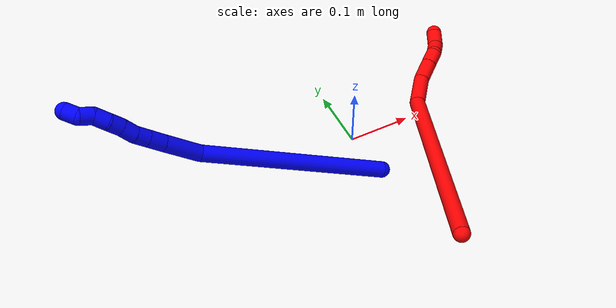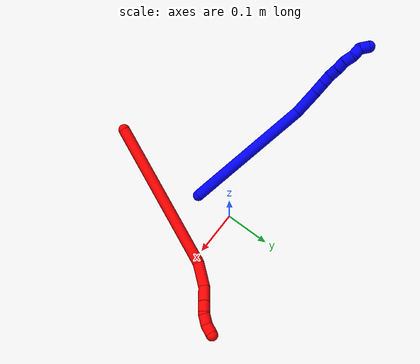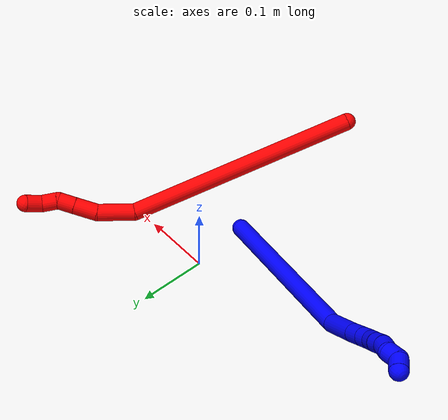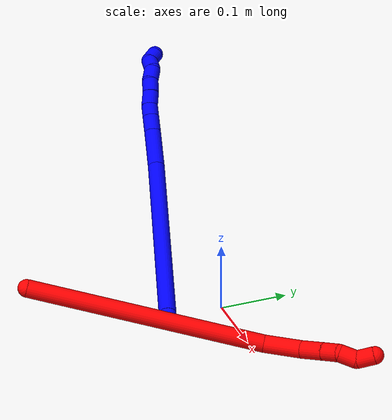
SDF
<sdf version="1.7">
 <world name="default">
  <model name="photoneo_s_sensor">
   <static>1</static>
   <pose>0 0 2 1.57079 1.57079 3.14159</pose>
   <link name="link">
    <inertial><mass>0.1</mass></inertial>
    <sensor name="sensor" type="depth">
     <update_rate>30</update_rate>
     <camera>
      <horizontal_fov>1.22</horizontal_fov>
      <image><width>1920</width><height>1200</height><format>B8G8R8</format></image>
      <clip><near>0.1</near><far>4</far></clip>
      <depth_camera><output>points</output></depth_camera>
     </camera>
     <plugin name="camera_plugin" filename="libgazebo_ros_depth_camera.so">
      <baseline>0.2</baseline>
      <alwaysOn>1</alwaysOn>
      <updateRate>0.0</updateRate>
      <cameraName>camera_ir</cameraName>
      <imageTopicName>/camera/color/image_raw</imageTopicName>
      <cameraInfoTopicName>/camera/color/camera_info</cameraInfoTopicName>
      <depthImageTopicName>/camera/depth/image_raw</depthImageTopicName>
      <depthImageCameraInfoTopicName>/camera/depth/camera_info</depthImageCameraInfoTopicName>
      <pointCloudTopicName>/camera/depth/points</pointCloudTopicName>
      <frameName>fr_optical</frameName>
      <pointCloudCutoff>0.1</pointCloudCutoff>
      <pointCloudCutoffMax>2.0</pointCloudCutoffMax>
      <distortionK1>0</distortionK1>
      <distortionK2>0</distortionK2>
      <distortionK3>0</distortionK3>
      <distortionT1>0</distortionT1>
      <distortionT2>0</distortionT2>
      <CxPrime>0</CxPrime>
      <Cx>0</Cx>
      <Cy>0</Cy>
      <focalLength>0</focalLength>
      <hackBaseline>0</hackBaseline>
     </plugin>
    </sensor>
   </link>
  </model>
  <model name="bin">
   <static>1</static>
   <link name="bottom">
    <collision name="collision-bottom">
     <pose>0 0 -0.01 0 -0 0</pose>
     <geometry><box><size>0.8 0.6 0.02</size></box></geometry>
     <surface>
      <friction><ode><mu>100</mu><mu2>100</mu2></ode></friction>
      <contact><collide_bitmask>65535</collide_bitmask></contact>
     </surface>
    </collision>
   </link>
   <link name="west_wall">
    <collision name="collision-west_wall">
     <pose>-0.41 0 0.1 0 -0 0</pose>
     <geometry><box><size>0.02 0.6 0.2</size></box></geometry>
     <surface>
      <friction><ode><mu>100</mu><mu2>100</mu2></ode></friction>
      <contact><collide_bitmask>65535</collide_bitmask></contact>
     </surface>
    </collision>
   </link>
   <link name="east_wall">
    <collision name="collision-east_wall">
     <pose>0.41 0 0.1 0 -0 0</pose>
     <geometry><box><size>0.02 0.6 0.2</size></box></geometry>
     <surface>
      <friction><ode><mu>100</mu><mu2>100</mu2></ode></friction>
      <contact><collide_bitmask>65535</collide_bitmask></contact>
     </surface>
    </collision>
   </link>
   <link name="south_wall">
    <collision name="collision-south_wall">
     <pose>0 -0.31 0.1 0 -0 0</pose>
     <geometry><box><size>0.8 0.02 0.2</size></box></geometry>
     <surface>
      <friction><ode><mu>100</mu><mu2>100</mu2></ode></friction>
      <contact><collide_bitmask>65535</collide_bitmask></contact>
     </surface>
    </collision>
   </link>
   <link name="north_wall">
    <collision name="collision-north_wall">
     <pose>0 0.31 0.1 0 -0 0</pose>
     <geometry><box><size>0.8 0.02 0.2</size></box></geometry>
     <surface>
      <friction><ode><mu>100</mu><mu2>100</mu2></ode></friction>
      <contact><collide_bitmask>65535</collide_bitmask></contact>
     </surface>
    </collision>
   </link>
  </model>
  <model name="1">
   <static>0</static>
   <link name="1">
    <collision name="collision-cylinder-e_1_1_4">
     <pose>-0.01979 0.004411 0.143485 -0.030733 -0.136992 0.002109</pose>
     <geometry><cylinder><radius>0.0125</radius><length>0.289822</length></cylinder></geometry>
     <surface>
      <friction><ode><mu>1.16</mu><mu2>1.16</mu2><slip1>0</slip1><slip2>0</slip2></ode></friction>
      <contact><ode><kp>1e+06</kp><kd>1</kd><max_vel>0</max_vel><min_depth>0.001</min_depth></ode></contact>
     </surface>
    </collision>
    <visual name="visual-cylinder-e_1_1_4">
     <pose>-0.01979 0.004411 0.143485 -0.030733 -0.136992 0.002109</pose>
     <geometry><cylinder><radius>0.0125</radius><length>0.289822</length></cylinder></geometry>
     <material><ambient>0 0 1 1</ambient></material>
    </visual>
    <collision name="collision-cylinder-e_2_4_5">
     <pose>-0.050587 0.014248 0.314199 -0.196702 -0.377458 0.037688</pose>
     <geometry><cylinder><radius>0.0125</radius><length>0.059733</length></cylinder></geometry>
     <surface>
      <friction><ode><mu>1.16</mu><mu2>1.16</mu2><slip1>0</slip1><slip2>0</slip2></ode></friction>
      <contact><ode><kp>1e+06</kp><kd>1</kd><max_vel>0</max_vel><min_depth>0.001</min_depth></ode></contact>
     </surface>
    </collision>
    <visual name="visual-cylinder-e_2_4_5">
     <pose>-0.050587 0.014248 0.314199 -0.196702 -0.377458 0.037688</pose>
     <geometry><cylinder><radius>0.0125</radius><length>0.059733</length></cylinder></geometry>
     <material><ambient>0 0 1 1</ambient></material>
    </visual>
    <collision name="collision-cylinder-e_3_5_6">
     <pose>-0.066638 0.022307 0.353091 -0.221995 -0.399172 0.045083</pose>
     <geometry><cylinder><radius>0.0125</radius><length>0.025954</length></cylinder></geometry>
     <surface>
      <friction><ode><mu>1.16</mu><mu2>1.16</mu2><slip1>0</slip1><slip2>0</slip2></ode></friction>
      <contact><ode><kp>1e+06</kp><kd>1</kd><max_vel>0</max_vel><min_depth>0.001</min_depth></ode></contact>
     </surface>
    </collision>
    <visual name="visual-cylinder-e_3_5_6">
     <pose>-0.066638 0.022307 0.353091 -0.221995 -0.399172 0.045083</pose>
     <geometry><cylinder><radius>0.0125</radius><length>0.025954</length></cylinder></geometry>
     <material><ambient>0 0 1 1</ambient></material>
    </visual>
    <collision name="collision-cylinder-e_4_6_7">
     <pose>-0.075537 0.026923 0.373805 -0.215737 -0.394323 0.043256</pose>
     <geometry><cylinder><radius>0.0125</radius><length>0.020069</length></cylinder></geometry>
     <surface>
      <friction><ode><mu>1.16</mu><mu2>1.16</mu2><slip1>0</slip1><slip2>0</slip2></ode></friction>
      <contact><ode><kp>1e+06</kp><kd>1</kd><max_vel>0</max_vel><min_depth>0.001</min_depth></ode></contact>
     </surface>
    </collision>
    <visual name="visual-cylinder-e_4_6_7">
     <pose>-0.075537 0.026923 0.373805 -0.215737 -0.394323 0.043256</pose>
     <geometry><cylinder><radius>0.0125</radius><length>0.020069</length></cylinder></geometry>
     <material><ambient>0 0 1 1</ambient></material>
    </visual>
    <collision name="collision-cylinder-e_5_7_8">
     <pose>-0.085465 0.029739 0.392074 -0.090038 -0.580582 0.026914</pose>
     <geometry><cylinder><radius>0.0125</radius><length>0.022143</length></cylinder></geometry>
     <surface>
      <friction><ode><mu>1.16</mu><mu2>1.16</mu2><slip1>0</slip1><slip2>0</slip2></ode></friction>
      <contact><ode><kp>1e+06</kp><kd>1</kd><max_vel>0</max_vel><min_depth>0.001</min_depth></ode></contact>
     </surface>
    </collision>
    <visual name="visual-cylinder-e_5_7_8">
     <pose>-0.085465 0.029739 0.392074 -0.090038 -0.580582 0.026914</pose>
     <geometry><cylinder><radius>0.0125</radius><length>0.022143</length></cylinder></geometry>
     <material><ambient>0 0 1 1</ambient></material>
    </visual>
    <collision name="collision-cylinder-e_6_8_9">
     <pose>-0.096216 0.032348 0.410132 -0.198421 -0.478729 0.048573</pose>
     <geometry><cylinder><radius>0.0125</radius><length>0.020312</length></cylinder></geometry>
     <surface>
      <friction><ode><mu>1.16</mu><mu2>1.16</mu2><slip1>0</slip1><slip2>0</slip2></ode></friction>
      <contact><ode><kp>1e+06</kp><kd>1</kd><max_vel>0</max_vel><min_depth>0.001</min_depth></ode></contact>
     </surface>
    </collision>
    <visual name="visual-cylinder-e_6_8_9">
     <pose>-0.096216 0.032348 0.410132 -0.198421 -0.478729 0.048573</pose>
     <geometry><cylinder><radius>0.0125</radius><length>0.020312</length></cylinder></geometry>
     <material><ambient>0 0 1 1</ambient></material>
    </visual>
    <collision name="collision-cylinder-e_7_9_10">
     <pose>-0.105142 0.033193 0.428839 0.09411 -0.40477 -0.019324</pose>
     <geometry><cylinder><radius>0.0125</radius><length>0.021571</length></cylinder></geometry>
     <surface>
      <friction><ode><mu>1.16</mu><mu2>1.16</mu2><slip1>0</slip1><slip2>0</slip2></ode></friction>
      <contact><ode><kp>1e+06</kp><kd>1</kd><max_vel>0</max_vel><min_depth>0.001</min_depth></ode></contact>
     </surface>
    </collision>
    <visual name="visual-cylinder-e_7_9_10">
     <pose>-0.105142 0.033193 0.428839 0.09411 -0.40477 -0.019324</pose>
     <geometry><cylinder><radius>0.0125</radius><length>0.021571</length></cylinder></geometry>
     <material><ambient>0 0 1 1</ambient></material>
    </visual>
    <collision name="collision-cylinder-e_8_10_11">
     <pose>-0.109767 0.034047 0.448688 -0.177101 -0.037272 0.00331</pose>
     <geometry><cylinder><radius>0.0125</radius><length>0.020287</length></cylinder></geometry>
     <surface>
      <friction><ode><mu>1.16</mu><mu2>1.16</mu2><slip1>0</slip1><slip2>0</slip2></ode></friction>
      <contact><ode><kp>1e+06</kp><kd>1</kd><max_vel>0</max_vel><min_depth>0.001</min_depth></ode></contact>
     </surface>
    </collision>
    <visual name="visual-cylinder-e_8_10_11">
     <pose>-0.109767 0.034047 0.448688 -0.177101 -0.037272 0.00331</pose>
     <geometry><cylinder><radius>0.0125</radius><length>0.020287</length></cylinder></geometry>
     <material><ambient>0 0 1 1</ambient></material>
    </visual>
    <collision name="collision-cylinder-e_9_11_2">
     <pose>-0.11219 0.031226 0.467365 0.48706 -0.204796 -0.051051</pose>
     <geometry><cylinder><radius>0.0125</radius><length>0.020108</length></cylinder></geometry>
     <surface>
      <friction><ode><mu>1.16</mu><mu2>1.16</mu2><slip1>0</slip1><slip2>0</slip2></ode></friction>
      <contact><ode><kp>1e+06</kp><kd>1</kd><max_vel>0</max_vel><min_depth>0.001</min_depth></ode></contact>
     </surface>
    </collision>
    <visual name="visual-cylinder-e_9_11_2">
     <pose>-0.11219 0.031226 0.467365 0.48706 -0.204796 -0.051051</pose>
     <geometry><cylinder><radius>0.0125</radius><length>0.020108</length></cylinder></geometry>
     <material><ambient>0 0 1 1</ambient></material>
    </visual>
    <collision name="collision-sphere-2">
     <pose>-0.114235 0.026619 0.476064 0 -0 0</pose>
     <geometry><sphere><radius>0.0125</radius></sphere></geometry>
     <surface>
      <friction><ode><mu>1.16</mu><mu2>1.16</mu2><slip1>0</slip1><slip2>0</slip2></ode></friction>
      <contact><ode><kp>1e+06</kp><kd>1</kd><max_vel>0</max_vel><min_depth>0.001</min_depth></ode></contact>
     </surface>
    </collision>
    <visual name="visual-sphere-2">
     <pose>-0.114235 0.026619 0.476064 0 -0 0</pose>
     <geometry><sphere><radius>0.0125</radius></sphere></geometry>
     <material><ambient>0 0 1 1</ambient></material>
    </visual>
    <collision name="collision-sphere-11">
     <pose>-0.110145 0.035833 0.458666 0 -0 0</pose>
     <geometry><sphere><radius>0.0125</radius></sphere></geometry>
     <surface>
      <friction><ode><mu>1.16</mu><mu2>1.16</mu2><slip1>0</slip1><slip2>0</slip2></ode></friction>
      <contact><ode><kp>1e+06</kp><kd>1</kd><max_vel>0</max_vel><min_depth>0.001</min_depth></ode></contact>
     </surface>
    </collision>
    <visual name="visual-sphere-11">
     <pose>-0.110145 0.035833 0.458666 0 -0 0</pose>
     <geometry><sphere><radius>0.0125</radius></sphere></geometry>
     <material><ambient>0 0 1 1</ambient></material>
    </visual>
    <collision name="collision-sphere-10">
     <pose>-0.109389 0.032262 0.43871 0 -0 0</pose>
     <geometry><sphere><radius>0.0125</radius></sphere></geometry>
     <surface>
      <friction><ode><mu>1.16</mu><mu2>1.16</mu2><slip1>0</slip1><slip2>0</slip2></ode></friction>
      <contact><ode><kp>1e+06</kp><kd>1</kd><max_vel>0</max_vel><min_depth>0.001</min_depth></ode></contact>
     </surface>
    </collision>
    <visual name="visual-sphere-10">
     <pose>-0.109389 0.032262 0.43871 0 -0 0</pose>
     <geometry><sphere><radius>0.0125</radius></sphere></geometry>
     <material><ambient>0 0 1 1</ambient></material>
    </visual>
    <collision name="collision-sphere-9">
     <pose>-0.100894 0.034125 0.418969 0 -0 0</pose>
     <geometry><sphere><radius>0.0125</radius></sphere></geometry>
     <surface>
      <friction><ode><mu>1.16</mu><mu2>1.16</mu2><slip1>0</slip1><slip2>0</slip2></ode></friction>
      <contact><ode><kp>1e+06</kp><kd>1</kd><max_vel>0</max_vel><min_depth>0.001</min_depth></ode></contact>
     </surface>
    </collision>
    <visual name="visual-sphere-9">
     <pose>-0.100894 0.034125 0.418969 0 -0 0</pose>
     <geometry><sphere><radius>0.0125</radius></sphere></geometry>
     <material><ambient>0 0 1 1</ambient></material>
    </visual>
    <collision name="collision-sphere-4">
     <pose>-0.039579 0.008822 0.286971 0 -0 0</pose>
     <geometry><sphere><radius>0.0125</radius></sphere></geometry>
     <surface>
      <friction><ode><mu>1.16</mu><mu2>1.16</mu2><slip1>0</slip1><slip2>0</slip2></ode></friction>
      <contact><ode><kp>1e+06</kp><kd>1</kd><max_vel>0</max_vel><min_depth>0.001</min_depth></ode></contact>
     </surface>
    </collision>
    <visual name="visual-sphere-4">
     <pose>-0.039579 0.008822 0.286971 0 -0 0</pose>
     <geometry><sphere><radius>0.0125</radius></sphere></geometry>
     <material><ambient>0 0 1 1</ambient></material>
    </visual>
    <collision name="collision-sphere-1">
     <geometry><sphere><radius>0.0125</radius></sphere></geometry>
     <surface>
      <friction><ode><mu>1.16</mu><mu2>1.16</mu2><slip1>0</slip1><slip2>0</slip2></ode></friction>
      <contact><ode><kp>1e+06</kp><kd>1</kd><max_vel>0</max_vel><min_depth>0.001</min_depth></ode></contact>
     </surface>
    </collision>
    <visual name="visual-sphere-1">
     <geometry><sphere><radius>0.0125</radius></sphere></geometry>
     <material><ambient>0 0 1 1</ambient></material>
    </visual>
    <collision name="collision-sphere-8">
     <pose>-0.091538 0.030571 0.401294 0 -0 0</pose>
     <geometry><sphere><radius>0.0125</radius></sphere></geometry>
     <surface>
      <friction><ode><mu>1.16</mu><mu2>1.16</mu2><slip1>0</slip1><slip2>0</slip2></ode></friction>
      <contact><ode><kp>1e+06</kp><kd>1</kd><max_vel>0</max_vel><min_depth>0.001</min_depth></ode></contact>
     </surface>
    </collision>
    <visual name="visual-sphere-8">
     <pose>-0.091538 0.030571 0.401294 0 -0 0</pose>
     <geometry><sphere><radius>0.0125</radius></sphere></geometry>
     <material><ambient>0 0 1 1</ambient></material>
    </visual>
    <collision name="collision-sphere-5">
     <pose>-0.061594 0.019675 0.341428 0 -0 0</pose>
     <geometry><sphere><radius>0.0125</radius></sphere></geometry>
     <surface>
      <friction><ode><mu>1.16</mu><mu2>1.16</mu2><slip1>0</slip1><slip2>0</slip2></ode></friction>
      <contact><ode><kp>1e+06</kp><kd>1</kd><max_vel>0</max_vel><min_depth>0.001</min_depth></ode></contact>
     </surface>
    </collision>
    <visual name="visual-sphere-5">
     <pose>-0.061594 0.019675 0.341428 0 -0 0</pose>
     <geometry><sphere><radius>0.0125</radius></sphere></geometry>
     <material><ambient>0 0 1 1</ambient></material>
    </visual>
    <collision name="collision-sphere-6">
     <pose>-0.071681 0.02494 0.364755 0 -0 0</pose>
     <geometry><sphere><radius>0.0125</radius></sphere></geometry>
     <surface>
      <friction><ode><mu>1.16</mu><mu2>1.16</mu2><slip1>0</slip1><slip2>0</slip2></ode></friction>
      <contact><ode><kp>1e+06</kp><kd>1</kd><max_vel>0</max_vel><min_depth>0.001</min_depth></ode></contact>
     </surface>
    </collision>
    <visual name="visual-sphere-6">
     <pose>-0.071681 0.02494 0.364755 0 -0 0</pose>
     <geometry><sphere><radius>0.0125</radius></sphere></geometry>
     <material><ambient>0 0 1 1</ambient></material>
    </visual>
    <collision name="collision-sphere-7">
     <pose>-0.079392 0.028906 0.382855 0 -0 0</pose>
     <geometry><sphere><radius>0.0125</radius></sphere></geometry>
     <surface>
      <friction><ode><mu>1.16</mu><mu2>1.16</mu2><slip1>0</slip1><slip2>0</slip2></ode></friction>
      <contact><ode><kp>1e+06</kp><kd>1</kd><max_vel>0</max_vel><min_depth>0.001</min_depth></ode></contact>
     </surface>
    </collision>
    <visual name="visual-sphere-7">
     <pose>-0.079392 0.028906 0.382855 0 -0 0</pose>
     <geometry><sphere><radius>0.0125</radius></sphere></geometry>
     <material><ambient>0 0 1 1</ambient></material>
    </visual>
    <inertial>
     <pose>-0.045201 0.013198 0.243566 0 -0 0</pose>
     <mass>0.5</mass>
     <inertia>
      <ixx>0.002047</ixx>
      <ixy>0</ixy>
      <ixz>0</ixz>
      <iyy>0.002078</iyy>
      <iyz>0</iyz>
      <izz>0.000261</izz>
     </inertia>
    </inertial>
   </link>
   <pose>0.005235 -0.083805 0.01149 1.10322 1.12122 -2.26018</pose>
  </model>
  <model name="2">
   <static>0</static>
   <link name="2">
    <collision name="collision-cylinder-e_1_1_4">
     <pose>0.046314 0.094687 -0.130837 -2.51513 0.279273 -0.818844</pose>
     <geometry><cylinder><radius>0.0125</radius><length>0.336029</length></cylinder></geometry>
     <surface>
      <friction><ode><mu>1.16</mu><mu2>1.16</mu2><slip1>0</slip1><slip2>0</slip2></ode></friction>
      <contact><ode><kp>1e+06</kp><kd>1</kd><max_vel>0</max_vel><min_depth>0.001</min_depth></ode></contact>
     </surface>
    </collision>
    <visual name="visual-cylinder-e_1_1_4">
     <pose>0.046314 0.094687 -0.130837 -2.51513 0.279273 -0.818844</pose>
     <geometry><cylinder><radius>0.0125</radius><length>0.336029</length></cylinder></geometry>
     <material><ambient>1 0 0 1</ambient></material>
    </visual>
    <collision name="collision-cylinder-e_2_4_5">
     <pose>0.105173 0.209655 -0.275004 -2.15231 0.477052 -0.847063</pose>
     <geometry><cylinder><radius>0.0125</radius><length>0.054641</length></cylinder></geometry>
     <surface>
      <friction><ode><mu>1.16</mu><mu2>1.16</mu2><slip1>0</slip1><slip2>0</slip2></ode></friction>
      <contact><ode><kp>1e+06</kp><kd>1</kd><max_vel>0</max_vel><min_depth>0.001</min_depth></ode></contact>
     </surface>
    </collision>
    <visual name="visual-cylinder-e_2_4_5">
     <pose>0.105173 0.209655 -0.275004 -2.15231 0.477052 -0.847063</pose>
     <geometry><cylinder><radius>0.0125</radius><length>0.054641</length></cylinder></geometry>
     <material><ambient>1 0 0 1</ambient></material>
    </visual>
    <collision name="collision-cylinder-e_3_5_6">
     <pose>0.127466 0.24372 -0.291862 -1.82128 0.600727 -0.759219</pose>
     <geometry><cylinder><radius>0.0125</radius><length>0.034495</length></cylinder></geometry>
     <surface>
      <friction><ode><mu>1.16</mu><mu2>1.16</mu2><slip1>0</slip1><slip2>0</slip2></ode></friction>
      <contact><ode><kp>1e+06</kp><kd>1</kd><max_vel>0</max_vel><min_depth>0.001</min_depth></ode></contact>
     </surface>
    </collision>
    <visual name="visual-cylinder-e_3_5_6">
     <pose>0.127466 0.24372 -0.291862 -1.82128 0.600727 -0.759219</pose>
     <geometry><cylinder><radius>0.0125</radius><length>0.034495</length></cylinder></geometry>
     <material><ambient>1 0 0 1</ambient></material>
    </visual>
    <collision name="collision-cylinder-e_4_6_7">
     <pose>0.144227 0.26717 -0.297821 -1.81729 0.61304 -0.771325</pose>
     <geometry><cylinder><radius>0.0125</radius><length>0.024375</length></cylinder></geometry>
     <surface>
      <friction><ode><mu>1.16</mu><mu2>1.16</mu2><slip1>0</slip1><slip2>0</slip2></ode></friction>
      <contact><ode><kp>1e+06</kp><kd>1</kd><max_vel>0</max_vel><min_depth>0.001</min_depth></ode></contact>
     </surface>
    </collision>
    <visual name="visual-cylinder-e_4_6_7">
     <pose>0.144227 0.26717 -0.297821 -1.81729 0.61304 -0.771325</pose>
     <geometry><cylinder><radius>0.0125</radius><length>0.024375</length></cylinder></geometry>
     <material><ambient>1 0 0 1</ambient></material>
    </visual>
    <collision name="collision-cylinder-e_5_7_8">
     <pose>0.157746 0.283796 -0.308313 -2.42933 0.548477 -1.295</pose>
     <geometry><cylinder><radius>0.0125</radius><length>0.024958</length></cylinder></geometry>
     <surface>
      <friction><ode><mu>1.16</mu><mu2>1.16</mu2><slip1>0</slip1><slip2>0</slip2></ode></friction>
      <contact><ode><kp>1e+06</kp><kd>1</kd><max_vel>0</max_vel><min_depth>0.001</min_depth></ode></contact>
     </surface>
    </collision>
    <visual name="visual-cylinder-e_5_7_8">
     <pose>0.157746 0.283796 -0.308313 -2.42933 0.548477 -1.295</pose>
     <geometry><cylinder><radius>0.0125</radius><length>0.024958</length></cylinder></geometry>
     <material><ambient>1 0 0 1</ambient></material>
    </visual>
    <collision name="collision-cylinder-e_6_8_2">
     <pose>0.166068 0.30247 -0.321071 -1.95225 0.142925 -0.210895</pose>
     <geometry><cylinder><radius>0.0125</radius><length>0.025503</length></cylinder></geometry>
     <surface>
      <friction><ode><mu>1.16</mu><mu2>1.16</mu2><slip1>0</slip1><slip2>0</slip2></ode></friction>
      <contact><ode><kp>1e+06</kp><kd>1</kd><max_vel>0</max_vel><min_depth>0.001</min_depth></ode></contact>
     </surface>
    </collision>
    <visual name="visual-cylinder-e_6_8_2">
     <pose>0.166068 0.30247 -0.321071 -1.95225 0.142925 -0.210895</pose>
     <geometry><cylinder><radius>0.0125</radius><length>0.025503</length></cylinder></geometry>
     <material><ambient>1 0 0 1</ambient></material>
    </visual>
    <collision name="collision-sphere-2">
     <pose>0.167885 0.314185 -0.32577 0 -0 0</pose>
     <geometry><sphere><radius>0.0125</radius></sphere></geometry>
     <surface>
      <friction><ode><mu>1.16</mu><mu2>1.16</mu2><slip1>0</slip1><slip2>0</slip2></ode></friction>
      <contact><ode><kp>1e+06</kp><kd>1</kd><max_vel>0</max_vel><min_depth>0.001</min_depth></ode></contact>
     </surface>
    </collision>
    <visual name="visual-sphere-2">
     <pose>0.167885 0.314185 -0.32577 0 -0 0</pose>
     <geometry><sphere><radius>0.0125</radius></sphere></geometry>
     <material><ambient>1 0 0 1</ambient></material>
    </visual>
    <collision name="collision-sphere-4">
     <pose>0.092629 0.189374 -0.261673 0 -0 0</pose>
     <geometry><sphere><radius>0.0125</radius></sphere></geometry>
     <surface>
      <friction><ode><mu>1.16</mu><mu2>1.16</mu2><slip1>0</slip1><slip2>0</slip2></ode></friction>
      <contact><ode><kp>1e+06</kp><kd>1</kd><max_vel>0</max_vel><min_depth>0.001</min_depth></ode></contact>
     </surface>
    </collision>
    <visual name="visual-sphere-4">
     <pose>0.092629 0.189374 -0.261673 0 -0 0</pose>
     <geometry><sphere><radius>0.0125</radius></sphere></geometry>
     <material><ambient>1 0 0 1</ambient></material>
    </visual>
    <collision name="collision-sphere-1">
     <geometry><sphere><radius>0.0125</radius></sphere></geometry>
     <surface>
      <friction><ode><mu>1.16</mu><mu2>1.16</mu2><slip1>0</slip1><slip2>0</slip2></ode></friction>
      <contact><ode><kp>1e+06</kp><kd>1</kd><max_vel>0</max_vel><min_depth>0.001</min_depth></ode></contact>
     </surface>
    </collision>
    <visual name="visual-sphere-1">
     <geometry><sphere><radius>0.0125</radius></sphere></geometry>
     <material><ambient>1 0 0 1</ambient></material>
    </visual>
    <collision name="collision-sphere-8">
     <pose>0.164252 0.290756 -0.316373 0 -0 0</pose>
     <geometry><sphere><radius>0.0125</radius></sphere></geometry>
     <surface>
      <friction><ode><mu>1.16</mu><mu2>1.16</mu2><slip1>0</slip1><slip2>0</slip2></ode></friction>
      <contact><ode><kp>1e+06</kp><kd>1</kd><max_vel>0</max_vel><min_depth>0.001</min_depth></ode></contact>
     </surface>
    </collision>
    <visual name="visual-sphere-8">
     <pose>0.164252 0.290756 -0.316373 0 -0 0</pose>
     <geometry><sphere><radius>0.0125</radius></sphere></geometry>
     <material><ambient>1 0 0 1</ambient></material>
    </visual>
    <collision name="collision-sphere-5">
     <pose>0.117718 0.229936 -0.288336 0 -0 0</pose>
     <geometry><sphere><radius>0.0125</radius></sphere></geometry>
     <surface>
      <friction><ode><mu>1.16</mu><mu2>1.16</mu2><slip1>0</slip1><slip2>0</slip2></ode></friction>
      <contact><ode><kp>1e+06</kp><kd>1</kd><max_vel>0</max_vel><min_depth>0.001</min_depth></ode></contact>
     </surface>
    </collision>
    <visual name="visual-sphere-5">
     <pose>0.117718 0.229936 -0.288336 0 -0 0</pose>
     <geometry><sphere><radius>0.0125</radius></sphere></geometry>
     <material><ambient>1 0 0 1</ambient></material>
    </visual>
    <collision name="collision-sphere-6">
     <pose>0.137215 0.257504 -0.295389 0 -0 0</pose>
     <geometry><sphere><radius>0.0125</radius></sphere></geometry>
     <surface>
      <friction><ode><mu>1.16</mu><mu2>1.16</mu2><slip1>0</slip1><slip2>0</slip2></ode></friction>
      <contact><ode><kp>1e+06</kp><kd>1</kd><max_vel>0</max_vel><min_depth>0.001</min_depth></ode></contact>
     </surface>
    </collision>
    <visual name="visual-sphere-6">
     <pose>0.137215 0.257504 -0.295389 0 -0 0</pose>
     <geometry><sphere><radius>0.0125</radius></sphere></geometry>
     <material><ambient>1 0 0 1</ambient></material>
    </visual>
    <collision name="collision-sphere-7">
     <pose>0.15124 0.276837 -0.300253 0 -0 0</pose>
     <geometry><sphere><radius>0.0125</radius></sphere></geometry>
     <surface>
      <friction><ode><mu>1.16</mu><mu2>1.16</mu2><slip1>0</slip1><slip2>0</slip2></ode></friction>
      <contact><ode><kp>1e+06</kp><kd>1</kd><max_vel>0</max_vel><min_depth>0.001</min_depth></ode></contact>
     </surface>
    </collision>
    <visual name="visual-sphere-7">
     <pose>0.15124 0.276837 -0.300253 0 -0 0</pose>
     <geometry><sphere><radius>0.0125</radius></sphere></geometry>
     <material><ambient>1 0 0 1</ambient></material>
    </visual>
    <inertial>
     <pose>0.074789 0.145979 -0.184403 0 -0 0</pose>
     <mass>0.5</mass>
     <inertia>
      <ixx>-0.000132</ixx>
      <ixy>0</ixy>
      <ixz>0</ixz>
      <iyy>-0.003604</iyy>
      <iyz>0</iyz>
      <izz>-0.002723</izz>
     </inertia>
    </inertial>
   </link>
   <pose>0.00555 -0.28803 0.095546 0.758011 0.293228 -0.167032</pose>
  </model>
 </world>
</sdf>
